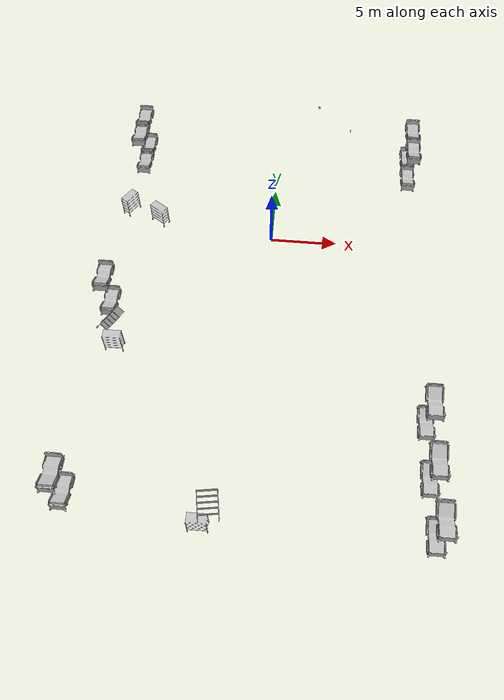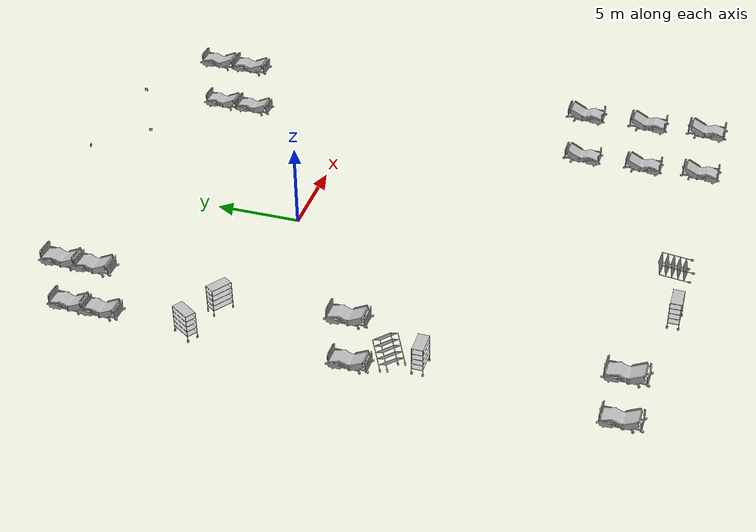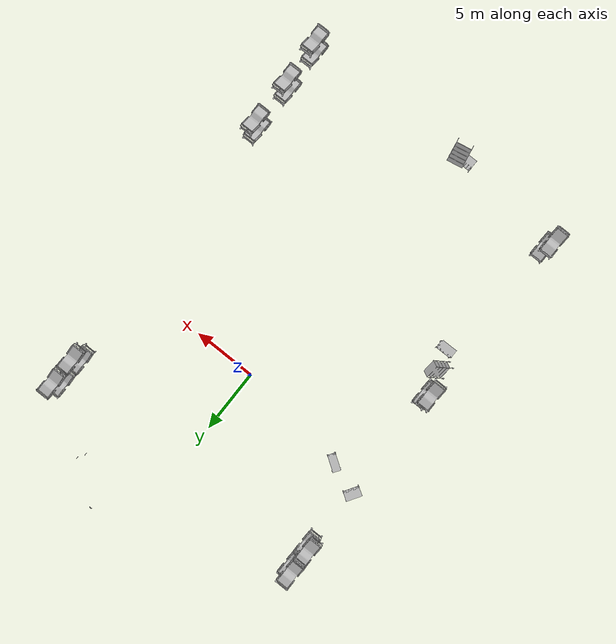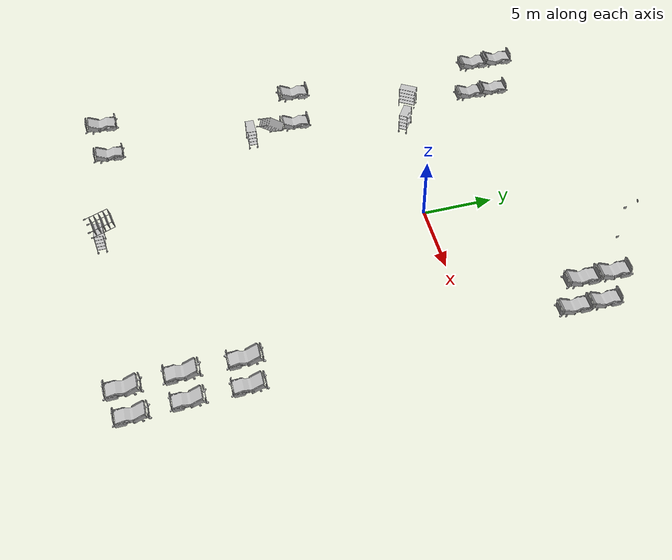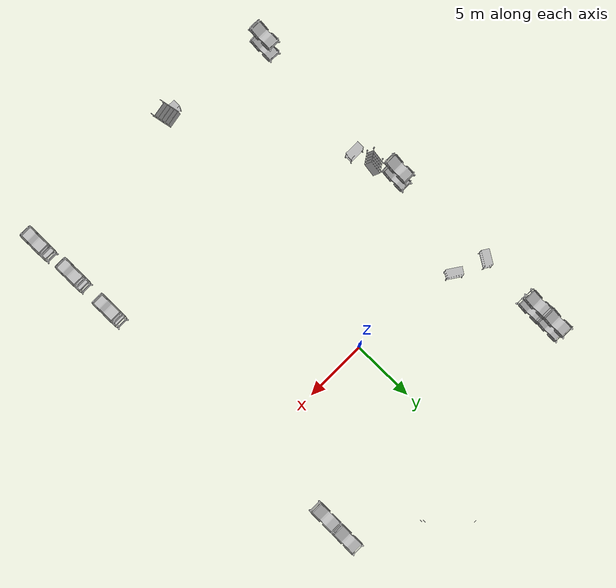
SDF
<sdf version="1.7">
 <world name="world">
  <gravity>0 0 -9.8</gravity>
  <physics name="default_physics" default="0" type="ode">
   <max_step_size>0.001</max_step_size>
   <real_time_factor>1</real_time_factor>
   <real_time_update_rate>1000</real_time_update_rate>
  </physics>
  <model name="CGMClassic_1">
   <frame name="CGMClassic::__model__" attached_to="CGMClassic::body">
    <pose relative_to="__model__">0 0 0 0 -0 0</pose>
   </frame>
   <static>1</static>
   <link name="CGMClassic::body">
    <pose relative_to="CGMClassic::__model__">0 0 0 0 -0 0</pose>
    <visual name="visual">
     <geometry>
      <mesh><uri>model://CGMClassic/meshes/CGMClassic.obj</uri><scale>0.01 0.01 0.01</scale></mesh>
     </geometry>
    </visual>
    <collision name="collision">
     <geometry>
      <mesh><uri>model://CGMClassic/meshes/CGMClassic.obj</uri><scale>0.01 0.01 0.01</scale></mesh>
     </geometry>
    </collision>
   </link>
   <pose>11.1777 -18.4129 0 0 0 -1.5656</pose>
  </model>
  <model name="CGMClassic_2">
   <frame name="CGMClassic::__model__" attached_to="CGMClassic::body">
    <pose relative_to="__model__">0 0 0 0 -0 0</pose>
   </frame>
   <static>1</static>
   <link name="CGMClassic::body">
    <pose relative_to="CGMClassic::__model__">0 0 0 0 -0 0</pose>
    <visual name="visual">
     <geometry>
      <mesh><uri>model://CGMClassic/meshes/CGMClassic.obj</uri><scale>0.01 0.01 0.01</scale></mesh>
     </geometry>
    </visual>
    <collision name="collision">
     <geometry>
      <mesh><uri>model://CGMClassic/meshes/CGMClassic.obj</uri><scale>0.01 0.01 0.01</scale></mesh>
     </geometry>
    </collision>
   </link>
   <pose>11.1179 -14.6493 0 0 0 -1.5656</pose>
  </model>
  <model name="CGMClassic_3">
   <frame name="CGMClassic::__model__" attached_to="CGMClassic::body">
    <pose relative_to="__model__">0 0 0 0 -0 0</pose>
   </frame>
   <static>1</static>
   <link name="CGMClassic::body">
    <pose relative_to="CGMClassic::__model__">0 0 0 0 -0 0</pose>
    <visual name="visual">
     <geometry>
      <mesh><uri>model://CGMClassic/meshes/CGMClassic.obj</uri><scale>0.01 0.01 0.01</scale></mesh>
     </geometry>
    </visual>
    <collision name="collision">
     <geometry>
      <mesh><uri>model://CGMClassic/meshes/CGMClassic.obj</uri><scale>0.01 0.01 0.01</scale></mesh>
     </geometry>
    </collision>
   </link>
   <pose>-11.2304 -21.1134 0 0 -0 1.56641</pose>
  </model>
  <model name="CGMClassic_4">
   <frame name="CGMClassic::__model__" attached_to="CGMClassic::body">
    <pose relative_to="__model__">0 0 0 0 -0 0</pose>
   </frame>
   <static>1</static>
   <link name="CGMClassic::body">
    <pose relative_to="CGMClassic::__model__">0 0 0 0 -0 0</pose>
    <visual name="visual">
     <geometry>
      <mesh><uri>model://CGMClassic/meshes/CGMClassic.obj</uri><scale>0.01 0.01 0.01</scale></mesh>
     </geometry>
    </visual>
    <collision name="collision">
     <geometry>
      <mesh><uri>model://CGMClassic/meshes/CGMClassic.obj</uri><scale>0.01 0.01 0.01</scale></mesh>
     </geometry>
    </collision>
   </link>
   <pose>-11.0878 -7.00992 0 0 -0 1.56296</pose>
  </model>
  <model name="CGMClassic_5">
   <frame name="CGMClassic::__model__" attached_to="CGMClassic::body">
    <pose relative_to="__model__">0 0 0 0 -0 0</pose>
   </frame>
   <static>1</static>
   <link name="CGMClassic::body">
    <pose relative_to="CGMClassic::__model__">0 0 0 0 -0 0</pose>
    <visual name="visual">
     <geometry>
      <mesh><uri>model://CGMClassic/meshes/CGMClassic.obj</uri><scale>0.01 0.01 0.01</scale></mesh>
     </geometry>
    </visual>
    <collision name="collision">
     <geometry>
      <mesh><uri>model://CGMClassic/meshes/CGMClassic.obj</uri><scale>0.01 0.01 0.01</scale></mesh>
     </geometry>
    </collision>
   </link>
   <pose>-11.0106 8.9505 -0.008203 0.0004 -0.035019 1.56285</pose>
  </model>
  <model name="CGMClassic_6">
   <frame name="CGMClassic::__model__" attached_to="CGMClassic::body">
    <pose relative_to="__model__">0 0 0 0 -0 0</pose>
   </frame>
   <static>1</static>
   <link name="CGMClassic::body">
    <pose relative_to="CGMClassic::__model__">0 0 0 0 -0 0</pose>
    <visual name="visual">
     <geometry>
      <mesh><uri>model://CGMClassic/meshes/CGMClassic.obj</uri><scale>0.01 0.01 0.01</scale></mesh>
     </geometry>
    </visual>
    <collision name="collision">
     <geometry>
      <mesh><uri>model://CGMClassic/meshes/CGMClassic.obj</uri><scale>0.01 0.01 0.01</scale></mesh>
     </geometry>
    </collision>
   </link>
   <pose>-11.025 7.10335 0 0 -0.035021 1.57427</pose>
  </model>
  <model name="StorageRack_2">
   <frame name="StorageRack::__model__" attached_to="StorageRack::link">
    <pose relative_to="__model__">0 0 0 0 -0 0</pose>
   </frame>
   <link name="StorageRack::link">
    <pose relative_to="StorageRack::__model__">0 0 0 0 -0 0</pose>
    <visual name="visual">
     <geometry><mesh><uri>model://StorageRack/meshes/StorageRack.obj</uri></mesh></geometry>
    </visual>
    <collision name="collision">
     <geometry><mesh><uri>model://StorageRack/meshes/StorageRack.obj</uri></mesh></geometry>
    </collision>
    <inertial>
     <inertia><ixx>1</ixx><ixy>0</ixy><ixz>0</ixz><iyy>1</iyy><iyz>0</iyz><izz>1</izz></inertia>
     <mass>1</mass>
    </inertial>
   </link>
   <pose>-2.69866 -22.4178 -1e-06 0 1e-06 0</pose>
  </model>
  <model name="CGMClassic_7">
   <frame name="CGMClassic::__model__" attached_to="CGMClassic::body">
    <pose relative_to="__model__">0 0 0 0 -0 0</pose>
   </frame>
   <static>1</static>
   <link name="CGMClassic::body">
    <pose relative_to="CGMClassic::__model__">0 0 0 0 -0 0</pose>
    <visual name="visual">
     <geometry>
      <mesh><uri>model://CGMClassic/meshes/CGMClassic.obj</uri><scale>0.01 0.01 0.01</scale></mesh>
     </geometry>
    </visual>
    <collision name="collision">
     <geometry>
      <mesh><uri>model://CGMClassic/meshes/CGMClassic.obj</uri><scale>0.01 0.01 0.01</scale></mesh>
     </geometry>
    </collision>
   </link>
   <pose>10.6166 9.06291 -0.008203 0.0004 -0.035019 1.56285</pose>
  </model>
  <model name="CGMClassic_8">
   <frame name="CGMClassic::__model__" attached_to="CGMClassic::body">
    <pose relative_to="__model__">0 0 0 0 -0 0</pose>
   </frame>
   <static>1</static>
   <link name="CGMClassic::body">
    <pose relative_to="CGMClassic::__model__">0 0 0 0 -0 0</pose>
    <visual name="visual">
     <geometry>
      <mesh><uri>model://CGMClassic/meshes/CGMClassic.obj</uri><scale>0.01 0.01 0.01</scale></mesh>
     </geometry>
    </visual>
    <collision name="collision">
     <geometry>
      <mesh><uri>model://CGMClassic/meshes/CGMClassic.obj</uri><scale>0.01 0.01 0.01</scale></mesh>
     </geometry>
    </collision>
   </link>
   <pose>10.6006 6.90956 -0.008203 0.0004 -0.035019 1.56285</pose>
  </model>
  <model name="CGMClassic_9">
   <frame name="CGMClassic::__model__" attached_to="CGMClassic::body">
    <pose relative_to="__model__">0 0 0 0 -0 0</pose>
   </frame>
   <static>1</static>
   <link name="CGMClassic::body">
    <pose relative_to="CGMClassic::__model__">0 0 0 0 -0 0</pose>
    <visual name="visual">
     <geometry>
      <mesh><uri>model://CGMClassic/meshes/CGMClassic.obj</uri><scale>0.01 0.01 0.01</scale></mesh>
     </geometry>
    </visual>
    <collision name="collision">
     <geometry>
      <mesh><uri>model://CGMClassic/meshes/CGMClassic.obj</uri><scale>0.01 0.01 0.01</scale></mesh>
     </geometry>
    </collision>
   </link>
   <pose>11.3613 -21.8867 0 0 0 -1.5656</pose>
  </model>
  <model name="StorageRack_3">
   <frame name="StorageRack::__model__" attached_to="StorageRack::link">
    <pose relative_to="__model__">0 0 0 0 -0 0</pose>
   </frame>
   <link name="StorageRack::link">
    <pose relative_to="StorageRack::__model__">0 0 0 0 -0 0</pose>
    <visual name="visual">
     <geometry><mesh><uri>model://StorageRack/meshes/StorageRack.obj</uri></mesh></geometry>
    </visual>
    <collision name="collision">
     <geometry><mesh><uri>model://StorageRack/meshes/StorageRack.obj</uri></mesh></geometry>
    </collision>
    <inertial>
     <inertia><ixx>1</ixx><ixy>0</ixy><ixz>0</ixz><iyy>1</iyy><iyz>0</iyz><izz>1</izz></inertia>
     <mass>1</mass>
    </inertial>
   </link>
   <pose>-10.1178 -10.4694 -0 0 -0 0</pose>
  </model>
  <model name="StorageRack_4">
   <frame name="StorageRack::__model__" attached_to="StorageRack::link">
    <pose relative_to="__model__">0 0 0 0 -0 0</pose>
   </frame>
   <link name="StorageRack::link">
    <pose relative_to="StorageRack::__model__">0 0 0 0 -0 0</pose>
    <visual name="visual">
     <geometry><mesh><uri>model://StorageRack/meshes/StorageRack.obj</uri></mesh></geometry>
    </visual>
    <collision name="collision">
     <geometry><mesh><uri>model://StorageRack/meshes/StorageRack.obj</uri></mesh></geometry>
    </collision>
    <inertial>
     <inertia><ixx>1</ixx><ixy>0</ixy><ixz>0</ixz><iyy>1</iyy><iyz>0</iyz><izz>1</izz></inertia>
     <mass>1</mass>
    </inertial>
   </link>
   <pose>-11.2409 2.10609 -1e-06 -1e-06 -1e-06 1.00872</pose>
  </model>
  <light name="ceiling_light_0" type="spot">
   <pose>-0.194533 13.8034 2.8 0 -0 0</pose>
   <diffuse>0.494118 0.494118 0.494118 1</diffuse>
   <specular>0.0941176 0.0941176 0.0941176 1</specular>
   <direction>0 0 -1</direction>
   <attenuation>
    <range>20</range>
    <constant>0.8</constant>
    <linear>0.1</linear>
    <quadratic>0.001</quadratic>
   </attenuation>
   <cast_shadows>0</cast_shadows>
   <spot><inner_angle>1</inner_angle><outer_angle>2.5</outer_angle><falloff>1</falloff></spot>
  </light>
  <light name="ceiling_light_1" type="spot">
   <pose>6.30005 8.9551 2.8 0 -0 0</pose>
   <diffuse>0.494118 0.494118 0.494118 1</diffuse>
   <specular>0.0941176 0.0941176 0.0941176 1</specular>
   <direction>0 0 -1</direction>
   <attenuation>
    <range>20</range>
    <constant>0.8</constant>
    <linear>0.1</linear>
    <quadratic>0.001</quadratic>
   </attenuation>
   <cast_shadows>0</cast_shadows>
   <spot><inner_angle>1</inner_angle><outer_angle>2.5</outer_angle><falloff>1</falloff></spot>
  </light>
  <light name="ceiling_light_2" type="spot">
   <pose>0.212387 2.1354 2.8 0 -0 0</pose>
   <diffuse>0.494118 0.494118 0.494118 1</diffuse>
   <specular>0.0941176 0.0941176 0.0941176 1</specular>
   <direction>0 0 -1</direction>
   <attenuation>
    <range>20</range>
    <constant>0.8</constant>
    <linear>0.1</linear>
    <quadratic>0.001</quadratic>
   </attenuation>
   <cast_shadows>0</cast_shadows>
   <spot><inner_angle>1</inner_angle><outer_angle>2.5</outer_angle><falloff>1</falloff></spot>
  </light>
  <light name="ceiling_light_3" type="spot">
   <pose>-5.81057 7.18327 2.8 0 -0 0</pose>
   <diffuse>0.494118 0.494118 0.494118 1</diffuse>
   <specular>0.0941176 0.0941176 0.0941176 1</specular>
   <direction>0 0 -1</direction>
   <attenuation>
    <range>20</range>
    <constant>0.8</constant>
    <linear>0.1</linear>
    <quadratic>0.001</quadratic>
   </attenuation>
   <cast_shadows>0</cast_shadows>
   <spot><inner_angle>1</inner_angle><outer_angle>2.5</outer_angle><falloff>1</falloff></spot>
  </light>
  <light name="ceiling_light_4" type="spot">
   <pose>-4.54396 -3.67312 2.8 0 -0 0</pose>
   <diffuse>0.494118 0.494118 0.494118 1</diffuse>
   <specular>0.0941176 0.0941176 0.0941176 1</specular>
   <direction>0 0 -1</direction>
   <attenuation>
    <range>20</range>
    <constant>0.8</constant>
    <linear>0.1</linear>
    <quadratic>0.001</quadratic>
   </attenuation>
   <cast_shadows>0</cast_shadows>
   <spot><inner_angle>1</inner_angle><outer_angle>2.5</outer_angle><falloff>1</falloff></spot>
  </light>
  <light name="ceiling_light_5" type="spot">
   <pose>-4.37087 -14.4782 2.8 0 -0 0</pose>
   <diffuse>0.494118 0.494118 0.494118 1</diffuse>
   <specular>0.0941176 0.0941176 0.0941176 1</specular>
   <direction>0 0 -1</direction>
   <attenuation>
    <range>20</range>
    <constant>0.8</constant>
    <linear>0.1</linear>
    <quadratic>0.001</quadratic>
   </attenuation>
   <cast_shadows>0</cast_shadows>
   <spot><inner_angle>1</inner_angle><outer_angle>2.5</outer_angle><falloff>1</falloff></spot>
  </light>
  <light name="ceiling_light_6" type="spot">
   <pose>-4.39457 -24.5382 2.8 0 -0 0</pose>
   <diffuse>0.494118 0.494118 0.494118 1</diffuse>
   <specular>0.0941176 0.0941176 0.0941176 1</specular>
   <direction>0 0 -1</direction>
   <attenuation>
    <range>20</range>
    <constant>0.8</constant>
    <linear>0.1</linear>
    <quadratic>0.001</quadratic>
   </attenuation>
   <cast_shadows>0</cast_shadows>
   <spot><inner_angle>1</inner_angle><outer_angle>2.5</outer_angle><falloff>1</falloff></spot>
  </light>
  <light name="ceiling_light_7" type="spot">
   <pose>-4.89858 -33.5301 2.8 0 -0 0</pose>
   <diffuse>0.494118 0.494118 0.494118 1</diffuse>
   <specular>0.0941176 0.0941176 0.0941176 1</specular>
   <direction>0 0 -1</direction>
   <attenuation>
    <range>20</range>
    <constant>0.8</constant>
    <linear>0.1</linear>
    <quadratic>0.001</quadratic>
   </attenuation>
   <cast_shadows>0</cast_shadows>
   <spot><inner_angle>1</inner_angle><outer_angle>2.5</outer_angle><falloff>1</falloff></spot>
  </light>
  <light name="ceiling_light_8" type="spot">
   <pose>4.63967 -24.4587 2.8 0 -0 0</pose>
   <diffuse>0.494118 0.494118 0.494118 1</diffuse>
   <specular>0.0941176 0.0941176 0.0941176 1</specular>
   <direction>0 0 -1</direction>
   <attenuation>
    <range>20</range>
    <constant>0.8</constant>
    <linear>0.1</linear>
    <quadratic>0.001</quadratic>
   </attenuation>
   <cast_shadows>0</cast_shadows>
   <spot><inner_angle>1</inner_angle><outer_angle>2.5</outer_angle><falloff>1</falloff></spot>
  </light>
  <light name="ceiling_light_9" type="spot">
   <pose>4.92633 -14.3923 2.8 0 -0 0</pose>
   <diffuse>0.494118 0.494118 0.494118 1</diffuse>
   <specular>0.0941176 0.0941176 0.0941176 1</specular>
   <direction>0 0 -1</direction>
   <attenuation>
    <range>20</range>
    <constant>0.8</constant>
    <linear>0.1</linear>
    <quadratic>0.001</quadratic>
   </attenuation>
   <cast_shadows>0</cast_shadows>
   <spot><inner_angle>1</inner_angle><outer_angle>2.5</outer_angle><falloff>1</falloff></spot>
  </light>
  <light name="ceiling_light_10" type="spot">
   <pose>4.7009 -3.77715 2.8 0 -0 0</pose>
   <diffuse>0.494118 0.494118 0.494118 1</diffuse>
   <specular>0.0941176 0.0941176 0.0941176 1</specular>
   <direction>0 0 -1</direction>
   <attenuation>
    <range>20</range>
    <constant>0.8</constant>
    <linear>0.1</linear>
    <quadratic>0.001</quadratic>
   </attenuation>
   <cast_shadows>0</cast_shadows>
   <spot><inner_angle>1</inner_angle><outer_angle>2.5</outer_angle><falloff>1</falloff></spot>
  </light>
  <light name="ceiling_light_11" type="spot">
   <pose>-9.02467 14.516 2.8 0 -0 0</pose>
   <diffuse>0.494118 0.494118 0.494118 1</diffuse>
   <specular>0.0941176 0.0941176 0.0941176 1</specular>
   <direction>0 0 -1</direction>
   <attenuation>
    <range>20</range>
    <constant>0.8</constant>
    <linear>0.1</linear>
    <quadratic>0.001</quadratic>
   </attenuation>
   <cast_shadows>0</cast_shadows>
   <spot><inner_angle>1</inner_angle><outer_angle>2.5</outer_angle><falloff>1</falloff></spot>
  </light>
  <light name="ceiling_light_12" type="spot">
   <pose>9.12495 14.4234 2.8 0 -0 0</pose>
   <diffuse>0.494118 0.494118 0.494118 1</diffuse>
   <specular>0.0941176 0.0941176 0.0941176 1</specular>
   <direction>0 0 -1</direction>
   <attenuation>
    <range>20</range>
    <constant>0.8</constant>
    <linear>0.1</linear>
    <quadratic>0.001</quadratic>
   </attenuation>
   <cast_shadows>0</cast_shadows>
   <spot><inner_angle>1</inner_angle><outer_angle>2.5</outer_angle><falloff>1</falloff></spot>
  </light>
  <light name="ceiling_light_13" type="spot">
   <pose>9.49822 -5.56304 2.8 0 -0 0</pose>
   <diffuse>0.494118 0.494118 0.494118 1</diffuse>
   <specular>0.0941176 0.0941176 0.0941176 1</specular>
   <direction>0 0 -1</direction>
   <attenuation>
    <range>20</range>
    <constant>0.8</constant>
    <linear>0.1</linear>
    <quadratic>0.001</quadratic>
   </attenuation>
   <cast_shadows>0</cast_shadows>
   <spot><inner_angle>1</inner_angle><outer_angle>2.5</outer_angle><falloff>1</falloff></spot>
  </light>
  <light name="ceiling_light_14" type="spot">
   <pose>-9.46806 -4.74662 2.8 0 -0 0</pose>
   <diffuse>0.494118 0.494118 0.494118 1</diffuse>
   <specular>0.0941176 0.0941176 0.0941176 1</specular>
   <direction>0 0 -1</direction>
   <attenuation>
    <range>20</range>
    <constant>0.8</constant>
    <linear>0.1</linear>
    <quadratic>0.001</quadratic>
   </attenuation>
   <cast_shadows>0</cast_shadows>
   <spot><inner_angle>1</inner_angle><outer_angle>2.5</outer_angle><falloff>1</falloff></spot>
  </light>
  <light name="ceiling_light_15" type="spot">
   <pose>-9.46885 -19.0778 2.8 0 -0 0</pose>
   <diffuse>0.494118 0.494118 0.494118 1</diffuse>
   <specular>0.0901961 0.0901961 0.0901961 1</specular>
   <direction>0 0 -1</direction>
   <attenuation>
    <range>20</range>
    <constant>0.8</constant>
    <linear>0.1</linear>
    <quadratic>0.001</quadratic>
   </attenuation>
   <cast_shadows>0</cast_shadows>
   <spot><inner_angle>1</inner_angle><outer_angle>2.5</outer_angle><falloff>1</falloff></spot>
  </light>
  <light name="ceiling_light_16" type="spot">
   <pose>-9.42207 -28.0708 2.8 0 -0 0</pose>
   <diffuse>0.494118 0.494118 0.494118 1</diffuse>
   <specular>0.0901961 0.0901961 0.0901961 1</specular>
   <direction>0 0 -1</direction>
   <attenuation>
    <range>20</range>
    <constant>0.8</constant>
    <linear>0.1</linear>
    <quadratic>0.001</quadratic>
   </attenuation>
   <cast_shadows>0</cast_shadows>
   <spot><inner_angle>1</inner_angle><outer_angle>2.5</outer_angle><falloff>1</falloff></spot>
  </light>
  <light name="ceiling_light_17" type="spot">
   <pose>1.66302 -11.4026 2.8 0 -0 0</pose>
   <diffuse>0.494118 0.494118 0.494118 1</diffuse>
   <specular>0.0901961 0.0901961 0.0901961 1</specular>
   <direction>0 0 -1</direction>
   <attenuation>
    <range>20</range>
    <constant>0.8</constant>
    <linear>0.1</linear>
    <quadratic>0.001</quadratic>
   </attenuation>
   <cast_shadows>0</cast_shadows>
   <spot><inner_angle>1</inner_angle><outer_angle>2.5</outer_angle><falloff>1</falloff></spot>
  </light>
  <light name="ceiling_light_18" type="spot">
   <pose>-1.64839 -19.4418 2.8 0 -0 0</pose>
   <diffuse>0.494118 0.494118 0.494118 1</diffuse>
   <specular>0.0901961 0.0901961 0.0901961 1</specular>
   <direction>0 0 -1</direction>
   <attenuation>
    <range>20</range>
    <constant>0.8</constant>
    <linear>0.1</linear>
    <quadratic>0.001</quadratic>
   </attenuation>
   <cast_shadows>0</cast_shadows>
   <spot><inner_angle>1</inner_angle><outer_angle>2.5</outer_angle><falloff>1</falloff></spot>
  </light>
  <light name="ceiling_light_19" type="spot">
   <pose>1.85793 -19.3856 2.8 0 -0 0</pose>
   <diffuse>0.494118 0.494118 0.494118 1</diffuse>
   <specular>0.0901961 0.0901961 0.0901961 1</specular>
   <direction>0 0 -1</direction>
   <attenuation>
    <range>20</range>
    <constant>0.8</constant>
    <linear>0.1</linear>
    <quadratic>0.001</quadratic>
   </attenuation>
   <cast_shadows>0</cast_shadows>
   <spot><inner_angle>1</inner_angle><outer_angle>2.5</outer_angle><falloff>1</falloff></spot>
  </light>
  <light name="ceiling_light_20" type="spot">
   <pose>-3.74086 -4.44142 2.8 0 -0 0</pose>
   <diffuse>0.494118 0.494118 0.494118 1</diffuse>
   <specular>0.0901961 0.0901961 0.0901961 1</specular>
   <direction>0 0 -1</direction>
   <attenuation>
    <range>20</range>
    <constant>0.8</constant>
    <linear>0.1</linear>
    <quadratic>0.001</quadratic>
   </attenuation>
   <cast_shadows>0</cast_shadows>
   <spot><inner_angle>1</inner_angle><outer_angle>2.5</outer_angle><falloff>1</falloff></spot>
  </light>
  <light name="ceiling_light_21" type="spot">
   <pose>-1.7167 -11.3151 2.8 0 -0 0</pose>
   <diffuse>0.494118 0.494118 0.494118 1</diffuse>
   <specular>0.0901961 0.0901961 0.0901961 1</specular>
   <direction>0 0 -1</direction>
   <attenuation>
    <range>20</range>
    <constant>0.8</constant>
    <linear>0.1</linear>
    <quadratic>0.001</quadratic>
   </attenuation>
   <cast_shadows>0</cast_shadows>
   <spot><inner_angle>1</inner_angle><outer_angle>2.5</outer_angle><falloff>1</falloff></spot>
  </light>
  <light name="ceiling_light_22" type="spot">
   <pose>-9.60933 -14.3792 2.8 0 -0 0</pose>
   <diffuse>0.494118 0.494118 0.494118 1</diffuse>
   <specular>0.0901961 0.0901961 0.0901961 1</specular>
   <direction>0 0 -1</direction>
   <attenuation>
    <range>20</range>
    <constant>0.8</constant>
    <linear>0.1</linear>
    <quadratic>0.001</quadratic>
   </attenuation>
   <cast_shadows>0</cast_shadows>
   <spot><inner_angle>1</inner_angle><outer_angle>2.5</outer_angle><falloff>1</falloff></spot>
  </light>
  <light name="ceiling_light_23" type="spot">
   <pose>-8.89647 0.199867 2.8 0 -0 0</pose>
   <diffuse>0.494118 0.494118 0.494118 1</diffuse>
   <specular>0.0901961 0.0901961 0.0901961 1</specular>
   <direction>0 0 -1</direction>
   <attenuation>
    <range>20</range>
    <constant>0.8</constant>
    <linear>0.1</linear>
    <quadratic>0.001</quadratic>
   </attenuation>
   <cast_shadows>0</cast_shadows>
   <spot><inner_angle>1</inner_angle><outer_angle>2.5</outer_angle><falloff>1</falloff></spot>
  </light>
  <light name="ceiling_light_24" type="spot">
   <pose>8.80325 1.99908 2.8 0 -0 0</pose>
   <diffuse>0.494118 0.494118 0.494118 1</diffuse>
   <specular>0.0901961 0.0901961 0.0901961 1</specular>
   <direction>0 0 -1</direction>
   <attenuation>
    <range>20</range>
    <constant>0.8</constant>
    <linear>0.1</linear>
    <quadratic>0.001</quadratic>
   </attenuation>
   <cast_shadows>0</cast_shadows>
   <spot><inner_angle>1</inner_angle><outer_angle>2.5</outer_angle><falloff>1</falloff></spot>
  </light>
  <light name="ceiling_light_25" type="spot">
   <pose>10.6153 10.2443 2.8 0 -0 0</pose>
   <diffuse>0.494118 0.494118 0.494118 1</diffuse>
   <specular>0.0941176 0.0941176 0.0941176 1</specular>
   <direction>0 0 -1</direction>
   <attenuation>
    <range>20</range>
    <constant>0.8</constant>
    <linear>0.1</linear>
    <quadratic>0.001</quadratic>
   </attenuation>
   <cast_shadows>0</cast_shadows>
   <spot><inner_angle>1</inner_angle><outer_angle>2.5</outer_angle><falloff>1</falloff></spot>
  </light>
  <light name="ceiling_light_26" type="spot">
   <pose>10.7071 5.95677 2.8 0 -0 0</pose>
   <diffuse>0.494118 0.494118 0.494118 1</diffuse>
   <specular>0.0941176 0.0941176 0.0941176 1</specular>
   <direction>0 0 -1</direction>
   <attenuation>
    <range>20</range>
    <constant>0.8</constant>
    <linear>0.1</linear>
    <quadratic>0.001</quadratic>
   </attenuation>
   <cast_shadows>0</cast_shadows>
   <spot><inner_angle>1</inner_angle><outer_angle>2.5</outer_angle><falloff>1</falloff></spot>
  </light>
  <light name="ceiling_light_27" type="spot">
   <pose>-10.6266 10.4097 2.8 0 -0 0</pose>
   <diffuse>0.494118 0.494118 0.494118 1</diffuse>
   <specular>0.0941176 0.0941176 0.0941176 1</specular>
   <direction>0 0 -1</direction>
   <attenuation>
    <range>20</range>
    <constant>0.8</constant>
    <linear>0.1</linear>
    <quadratic>0.001</quadratic>
   </attenuation>
   <cast_shadows>0</cast_shadows>
   <spot><inner_angle>1</inner_angle><outer_angle>2.5</outer_angle><falloff>1</falloff></spot>
  </light>
  <light name="ceiling_light_28" type="spot">
   <pose>-10.7712 6.05323 2.8 0 -0 0</pose>
   <diffuse>0.494118 0.494118 0.494118 1</diffuse>
   <specular>0.0941176 0.0941176 0.0941176 1</specular>
   <direction>0 0 -1</direction>
   <attenuation>
    <range>20</range>
    <constant>0.8</constant>
    <linear>0.1</linear>
    <quadratic>0.001</quadratic>
   </attenuation>
   <cast_shadows>0</cast_shadows>
   <spot><inner_angle>1</inner_angle><outer_angle>2.5</outer_angle><falloff>1</falloff></spot>
  </light>
  <light name="ceiling_light_29" type="spot">
   <pose>-9.64585 -30.5079 2.8 0 -0 0</pose>
   <diffuse>0.494118 0.494118 0.494118 1</diffuse>
   <specular>0.0941176 0.0941176 0.0941176 1</specular>
   <direction>0 0 -1</direction>
   <attenuation>
    <range>20</range>
    <constant>0.8</constant>
    <linear>0.1</linear>
    <quadratic>0.001</quadratic>
   </attenuation>
   <cast_shadows>0</cast_shadows>
   <spot><inner_angle>1</inner_angle><outer_angle>2.5</outer_angle><falloff>1</falloff></spot>
  </light>
  <light name="ceiling_light_30" type="spot">
   <pose>-11.9169 -24.6051 2.8 0 -0 0</pose>
   <diffuse>0.494118 0.494118 0.494118 1</diffuse>
   <specular>0.0941176 0.0941176 0.0941176 1</specular>
   <direction>0 0 -1</direction>
   <attenuation>
    <range>20</range>
    <constant>0.8</constant>
    <linear>0.1</linear>
    <quadratic>0.001</quadratic>
   </attenuation>
   <cast_shadows>0</cast_shadows>
   <spot><inner_angle>1</inner_angle><outer_angle>2.5</outer_angle><falloff>1</falloff></spot>
  </light>
  <light name="ceiling_light_31" type="spot">
   <pose>-4.29701 11.4852 2.8 0 -0 0</pose>
   <diffuse>0.494118 0.494118 0.494118 1</diffuse>
   <specular>0.0901961 0.0901961 0.0901961 1</specular>
   <direction>0 0 -1</direction>
   <attenuation>
    <range>20</range>
    <constant>0.8</constant>
    <linear>0.1</linear>
    <quadratic>0.001</quadratic>
   </attenuation>
   <cast_shadows>0</cast_shadows>
   <spot><inner_angle>1</inner_angle><outer_angle>2.5</outer_angle><falloff>1</falloff></spot>
  </light>
  <light name="ceiling_light_32" type="spot">
   <pose>3.41329 12.0406 2.8 0 -0 0</pose>
   <diffuse>0.494118 0.494118 0.494118 1</diffuse>
   <specular>0.0901961 0.0901961 0.0901961 1</specular>
   <direction>0 0 -1</direction>
   <attenuation>
    <range>20</range>
    <constant>0.8</constant>
    <linear>0.1</linear>
    <quadratic>0.001</quadratic>
   </attenuation>
   <cast_shadows>0</cast_shadows>
   <spot><inner_angle>1</inner_angle><outer_angle>2.5</outer_angle><falloff>1</falloff></spot>
  </light>
  <light name="ceiling_light_33" type="spot">
   <pose>-0.181496 7.28878 2.8 0 -0 0</pose>
   <diffuse>0.494118 0.494118 0.494118 1</diffuse>
   <specular>0.0901961 0.0901961 0.0901961 1</specular>
   <direction>0 0 -1</direction>
   <attenuation>
    <range>20</range>
    <constant>0.8</constant>
    <linear>0.1</linear>
    <quadratic>0.001</quadratic>
   </attenuation>
   <cast_shadows>0</cast_shadows>
   <spot><inner_angle>1</inner_angle><outer_angle>2.5</outer_angle><falloff>1</falloff></spot>
  </light>
  <model name="floor_1_CGMClassic_1">
   <frame name="CGMClassic::__model__" attached_to="CGMClassic::body">
    <pose relative_to="__model__">0 0 0 0 -0 0</pose>
   </frame>
   <static>1</static>
   <link name="CGMClassic::body">
    <pose relative_to="CGMClassic::__model__">0 0 0 0 -0 0</pose>
    <visual name="visual">
     <geometry>
      <mesh><uri>model://CGMClassic/meshes/CGMClassic.obj</uri><scale>0.01 0.01 0.01</scale></mesh>
     </geometry>
    </visual>
    <collision name="collision">
     <geometry>
      <mesh><uri>model://CGMClassic/meshes/CGMClassic.obj</uri><scale>0.01 0.01 0.01</scale></mesh>
     </geometry>
    </collision>
   </link>
   <pose>11.1777 -18.4129 3 0 0 -1.5656</pose>
  </model>
  <model name="floor_1_CGMClassic_2">
   <frame name="CGMClassic::__model__" attached_to="CGMClassic::body">
    <pose relative_to="__model__">0 0 0 0 -0 0</pose>
   </frame>
   <static>1</static>
   <link name="CGMClassic::body">
    <pose relative_to="CGMClassic::__model__">0 0 0 0 -0 0</pose>
    <visual name="visual">
     <geometry>
      <mesh><uri>model://CGMClassic/meshes/CGMClassic.obj</uri><scale>0.01 0.01 0.01</scale></mesh>
     </geometry>
    </visual>
    <collision name="collision">
     <geometry>
      <mesh><uri>model://CGMClassic/meshes/CGMClassic.obj</uri><scale>0.01 0.01 0.01</scale></mesh>
     </geometry>
    </collision>
   </link>
   <pose>11.1179 -14.6493 3 0 0 -1.5656</pose>
  </model>
  <model name="floor_1_CGMClassic_3">
   <frame name="CGMClassic::__model__" attached_to="CGMClassic::body">
    <pose relative_to="__model__">0 0 0 0 -0 0</pose>
   </frame>
   <static>1</static>
   <link name="CGMClassic::body">
    <pose relative_to="CGMClassic::__model__">0 0 0 0 -0 0</pose>
    <visual name="visual">
     <geometry>
      <mesh><uri>model://CGMClassic/meshes/CGMClassic.obj</uri><scale>0.01 0.01 0.01</scale></mesh>
     </geometry>
    </visual>
    <collision name="collision">
     <geometry>
      <mesh><uri>model://CGMClassic/meshes/CGMClassic.obj</uri><scale>0.01 0.01 0.01</scale></mesh>
     </geometry>
    </collision>
   </link>
   <pose>-11.2304 -21.1134 3 0 -0 1.56641</pose>
  </model>
  <model name="floor_1_CGMClassic_4">
   <frame name="CGMClassic::__model__" attached_to="CGMClassic::body">
    <pose relative_to="__model__">0 0 0 0 -0 0</pose>
   </frame>
   <static>1</static>
   <link name="CGMClassic::body">
    <pose relative_to="CGMClassic::__model__">0 0 0 0 -0 0</pose>
    <visual name="visual">
     <geometry>
      <mesh><uri>model://CGMClassic/meshes/CGMClassic.obj</uri><scale>0.01 0.01 0.01</scale></mesh>
     </geometry>
    </visual>
    <collision name="collision">
     <geometry>
      <mesh><uri>model://CGMClassic/meshes/CGMClassic.obj</uri><scale>0.01 0.01 0.01</scale></mesh>
     </geometry>
    </collision>
   </link>
   <pose>-11.0878 -7.00992 3 0 -0 1.56296</pose>
  </model>
  <model name="floor_1_CGMClassic_5">
   <frame name="CGMClassic::__model__" attached_to="CGMClassic::body">
    <pose relative_to="__model__">0 0 0 0 -0 0</pose>
   </frame>
   <static>1</static>
   <link name="CGMClassic::body">
    <pose relative_to="CGMClassic::__model__">0 0 0 0 -0 0</pose>
    <visual name="visual">
     <geometry>
      <mesh><uri>model://CGMClassic/meshes/CGMClassic.obj</uri><scale>0.01 0.01 0.01</scale></mesh>
     </geometry>
    </visual>
    <collision name="collision">
     <geometry>
      <mesh><uri>model://CGMClassic/meshes/CGMClassic.obj</uri><scale>0.01 0.01 0.01</scale></mesh>
     </geometry>
    </collision>
   </link>
   <pose>-11.0106 8.9505 2.9918 0.0004 -0.035019 1.56285</pose>
  </model>
  <model name="floor_1_CGMClassic_6">
   <frame name="CGMClassic::__model__" attached_to="CGMClassic::body">
    <pose relative_to="__model__">0 0 0 0 -0 0</pose>
   </frame>
   <static>1</static>
   <link name="CGMClassic::body">
    <pose relative_to="CGMClassic::__model__">0 0 0 0 -0 0</pose>
    <visual name="visual">
     <geometry>
      <mesh><uri>model://CGMClassic/meshes/CGMClassic.obj</uri><scale>0.01 0.01 0.01</scale></mesh>
     </geometry>
    </visual>
    <collision name="collision">
     <geometry>
      <mesh><uri>model://CGMClassic/meshes/CGMClassic.obj</uri><scale>0.01 0.01 0.01</scale></mesh>
     </geometry>
    </collision>
   </link>
   <pose>-11.025 7.10335 3 0 -0.035021 1.57427</pose>
  </model>
  <model name="floor_1_StorageRack_2">
   <frame name="StorageRack::__model__" attached_to="StorageRack::link">
    <pose relative_to="__model__">0 0 0 0 -0 0</pose>
   </frame>
   <link name="StorageRack::link">
    <pose relative_to="StorageRack::__model__">0 0 0 0 -0 0</pose>
    <visual name="visual">
     <geometry><mesh><uri>model://StorageRack/meshes/StorageRack.obj</uri></mesh></geometry>
    </visual>
    <collision name="collision">
     <geometry><mesh><uri>model://StorageRack/meshes/StorageRack.obj</uri></mesh></geometry>
    </collision>
    <inertial>
     <inertia><ixx>1</ixx><ixy>0</ixy><ixz>0</ixz><iyy>1</iyy><iyz>0</iyz><izz>1</izz></inertia>
     <mass>1</mass>
    </inertial>
   </link>
   <pose>-1.8488 -22.936 2.93177 -1.35228 0.049679 0.170407</pose>
  </model>
  <model name="floor_1_CGMClassic_7">
   <frame name="CGMClassic::__model__" attached_to="CGMClassic::body">
    <pose relative_to="__model__">0 0 0 0 -0 0</pose>
   </frame>
   <static>1</static>
   <link name="CGMClassic::body">
    <pose relative_to="CGMClassic::__model__">0 0 0 0 -0 0</pose>
    <visual name="visual">
     <geometry>
      <mesh><uri>model://CGMClassic/meshes/CGMClassic.obj</uri><scale>0.01 0.01 0.01</scale></mesh>
     </geometry>
    </visual>
    <collision name="collision">
     <geometry>
      <mesh><uri>model://CGMClassic/meshes/CGMClassic.obj</uri><scale>0.01 0.01 0.01</scale></mesh>
     </geometry>
    </collision>
   </link>
   <pose>10.6166 9.06291 2.9918 0.0004 -0.035019 1.56285</pose>
  </model>
  <model name="floor_1_CGMClassic_8">
   <frame name="CGMClassic::__model__" attached_to="CGMClassic::body">
    <pose relative_to="__model__">0 0 0 0 -0 0</pose>
   </frame>
   <static>1</static>
   <link name="CGMClassic::body">
    <pose relative_to="CGMClassic::__model__">0 0 0 0 -0 0</pose>
    <visual name="visual">
     <geometry>
      <mesh><uri>model://CGMClassic/meshes/CGMClassic.obj</uri><scale>0.01 0.01 0.01</scale></mesh>
     </geometry>
    </visual>
    <collision name="collision">
     <geometry>
      <mesh><uri>model://CGMClassic/meshes/CGMClassic.obj</uri><scale>0.01 0.01 0.01</scale></mesh>
     </geometry>
    </collision>
   </link>
   <pose>10.6006 6.90956 2.9918 0.0004 -0.035019 1.56285</pose>
  </model>
  <model name="floor_1_CGMClassic_9">
   <frame name="CGMClassic::__model__" attached_to="CGMClassic::body">
    <pose relative_to="__model__">0 0 0 0 -0 0</pose>
   </frame>
   <static>1</static>
   <link name="CGMClassic::body">
    <pose relative_to="CGMClassic::__model__">0 0 0 0 -0 0</pose>
    <visual name="visual">
     <geometry>
      <mesh><uri>model://CGMClassic/meshes/CGMClassic.obj</uri><scale>0.01 0.01 0.01</scale></mesh>
     </geometry>
    </visual>
    <collision name="collision">
     <geometry>
      <mesh><uri>model://CGMClassic/meshes/CGMClassic.obj</uri><scale>0.01 0.01 0.01</scale></mesh>
     </geometry>
    </collision>
   </link>
   <pose>11.3613 -21.8867 3 0 0 -1.5656</pose>
  </model>
  <model name="floor_1_StorageRack_3">
   <frame name="StorageRack::__model__" attached_to="StorageRack::link">
    <pose relative_to="__model__">0 0 0 0 -0 0</pose>
   </frame>
   <link name="StorageRack::link">
    <pose relative_to="StorageRack::__model__">0 0 0 0 -0 0</pose>
    <visual name="visual">
     <geometry><mesh><uri>model://StorageRack/meshes/StorageRack.obj</uri></mesh></geometry>
    </visual>
    <collision name="collision">
     <geometry><mesh><uri>model://StorageRack/meshes/StorageRack.obj</uri></mesh></geometry>
    </collision>
    <inertial>
     <inertia><ixx>1</ixx><ixy>0</ixy><ixz>0</ixz><iyy>1</iyy><iyz>0</iyz><izz>1</izz></inertia>
     <mass>1</mass>
    </inertial>
   </link>
   <pose>-11.1973 -9.32612 0.547612 -0.718687 -0.653072 -1.58927</pose>
  </model>
  <model name="floor_1_StorageRack_4">
   <frame name="StorageRack::__model__" attached_to="StorageRack::link">
    <pose relative_to="__model__">0 0 0 0 -0 0</pose>
   </frame>
   <link name="StorageRack::link">
    <pose relative_to="StorageRack::__model__">0 0 0 0 -0 0</pose>
    <visual name="visual">
     <geometry><mesh><uri>model://StorageRack/meshes/StorageRack.obj</uri></mesh></geometry>
    </visual>
    <collision name="collision">
     <geometry><mesh><uri>model://StorageRack/meshes/StorageRack.obj</uri></mesh></geometry>
    </collision>
    <inertial>
     <inertia><ixx>1</ixx><ixy>0</ixy><ixz>0</ixz><iyy>1</iyy><iyz>0</iyz><izz>1</izz></inertia>
     <mass>1</mass>
    </inertial>
   </link>
   <pose>-8.79288 1.17712 -2e-06 0 3e-06 2.54889</pose>
  </model>
  <light name="floor_1_ceiling_light_0" type="spot">
   <pose>-0.194533 13.8034 5.8 0 -0 0</pose>
   <diffuse>0.494118 0.494118 0.494118 1</diffuse>
   <specular>0.0941176 0.0941176 0.0941176 1</specular>
   <direction>0 0 -1</direction>
   <attenuation>
    <range>20</range>
    <constant>0.8</constant>
    <linear>0.1</linear>
    <quadratic>0.001</quadratic>
   </attenuation>
   <cast_shadows>0</cast_shadows>
   <spot><inner_angle>1</inner_angle><outer_angle>2.5</outer_angle><falloff>1</falloff></spot>
  </light>
  <light name="floor_1_ceiling_light_1" type="spot">
   <pose>6.30005 8.9551 5.8 0 -0 0</pose>
   <diffuse>0.494118 0.494118 0.494118 1</diffuse>
   <specular>0.0941176 0.0941176 0.0941176 1</specular>
   <direction>0 0 -1</direction>
   <attenuation>
    <range>20</range>
    <constant>0.8</constant>
    <linear>0.1</linear>
    <quadratic>0.001</quadratic>
   </attenuation>
   <cast_shadows>0</cast_shadows>
   <spot><inner_angle>1</inner_angle><outer_angle>2.5</outer_angle><falloff>1</falloff></spot>
  </light>
  <light name="floor_1_ceiling_light_2" type="spot">
   <pose>0.212387 2.1354 5.8 0 -0 0</pose>
   <diffuse>0.494118 0.494118 0.494118 1</diffuse>
   <specular>0.0941176 0.0941176 0.0941176 1</specular>
   <direction>0 0 -1</direction>
   <attenuation>
    <range>20</range>
    <constant>0.8</constant>
    <linear>0.1</linear>
    <quadratic>0.001</quadratic>
   </attenuation>
   <cast_shadows>0</cast_shadows>
   <spot><inner_angle>1</inner_angle><outer_angle>2.5</outer_angle><falloff>1</falloff></spot>
  </light>
  <light name="floor_1_ceiling_light_3" type="spot">
   <pose>-5.81057 7.18327 5.8 0 -0 0</pose>
   <diffuse>0.494118 0.494118 0.494118 1</diffuse>
   <specular>0.0941176 0.0941176 0.0941176 1</specular>
   <direction>0 0 -1</direction>
   <attenuation>
    <range>20</range>
    <constant>0.8</constant>
    <linear>0.1</linear>
    <quadratic>0.001</quadratic>
   </attenuation>
   <cast_shadows>0</cast_shadows>
   <spot><inner_angle>1</inner_angle><outer_angle>2.5</outer_angle><falloff>1</falloff></spot>
  </light>
  <light name="floor_1_ceiling_light_4" type="spot">
   <pose>-4.54396 -3.67312 5.8 0 -0 0</pose>
   <diffuse>0.494118 0.494118 0.494118 1</diffuse>
   <specular>0.0941176 0.0941176 0.0941176 1</specular>
   <direction>0 0 -1</direction>
   <attenuation>
    <range>20</range>
    <constant>0.8</constant>
    <linear>0.1</linear>
    <quadratic>0.001</quadratic>
   </attenuation>
   <cast_shadows>0</cast_shadows>
   <spot><inner_angle>1</inner_angle><outer_angle>2.5</outer_angle><falloff>1</falloff></spot>
  </light>
  <light name="floor_1_ceiling_light_5" type="spot">
   <pose>-4.37087 -14.4782 5.8 0 -0 0</pose>
   <diffuse>0.494118 0.494118 0.494118 1</diffuse>
   <specular>0.0941176 0.0941176 0.0941176 1</specular>
   <direction>0 0 -1</direction>
   <attenuation>
    <range>20</range>
    <constant>0.8</constant>
    <linear>0.1</linear>
    <quadratic>0.001</quadratic>
   </attenuation>
   <cast_shadows>0</cast_shadows>
   <spot><inner_angle>1</inner_angle><outer_angle>2.5</outer_angle><falloff>1</falloff></spot>
  </light>
  <light name="floor_1_ceiling_light_6" type="spot">
   <pose>-4.39457 -24.5382 5.8 0 -0 0</pose>
   <diffuse>0.494118 0.494118 0.494118 1</diffuse>
   <specular>0.0941176 0.0941176 0.0941176 1</specular>
   <direction>0 0 -1</direction>
   <attenuation>
    <range>20</range>
    <constant>0.8</constant>
    <linear>0.1</linear>
    <quadratic>0.001</quadratic>
   </attenuation>
   <cast_shadows>0</cast_shadows>
   <spot><inner_angle>1</inner_angle><outer_angle>2.5</outer_angle><falloff>1</falloff></spot>
  </light>
  <light name="floor_1_ceiling_light_7" type="spot">
   <pose>-4.89858 -33.5301 5.8 0 -0 0</pose>
   <diffuse>0.494118 0.494118 0.494118 1</diffuse>
   <specular>0.0941176 0.0941176 0.0941176 1</specular>
   <direction>0 0 -1</direction>
   <attenuation>
    <range>20</range>
    <constant>0.8</constant>
    <linear>0.1</linear>
    <quadratic>0.001</quadratic>
   </attenuation>
   <cast_shadows>0</cast_shadows>
   <spot><inner_angle>1</inner_angle><outer_angle>2.5</outer_angle><falloff>1</falloff></spot>
  </light>
  <light name="floor_1_ceiling_light_8" type="spot">
   <pose>4.63967 -24.4587 5.8 0 -0 0</pose>
   <diffuse>0.494118 0.494118 0.494118 1</diffuse>
   <specular>0.0941176 0.0941176 0.0941176 1</specular>
   <direction>0 0 -1</direction>
   <attenuation>
    <range>20</range>
    <constant>0.8</constant>
    <linear>0.1</linear>
    <quadratic>0.001</quadratic>
   </attenuation>
   <cast_shadows>0</cast_shadows>
   <spot><inner_angle>1</inner_angle><outer_angle>2.5</outer_angle><falloff>1</falloff></spot>
  </light>
  <light name="floor_1_ceiling_light_9" type="spot">
   <pose>4.92633 -14.3923 5.8 0 -0 0</pose>
   <diffuse>0.494118 0.494118 0.494118 1</diffuse>
   <specular>0.0941176 0.0941176 0.0941176 1</specular>
   <direction>0 0 -1</direction>
   <attenuation>
    <range>20</range>
    <constant>0.8</constant>
    <linear>0.1</linear>
    <quadratic>0.001</quadratic>
   </attenuation>
   <cast_shadows>0</cast_shadows>
   <spot><inner_angle>1</inner_angle><outer_angle>2.5</outer_angle><falloff>1</falloff></spot>
  </light>
  <light name="floor_1_ceiling_light_10" type="spot">
   <pose>4.7009 -3.77715 5.8 0 -0 0</pose>
   <diffuse>0.494118 0.494118 0.494118 1</diffuse>
   <specular>0.0941176 0.0941176 0.0941176 1</specular>
   <direction>0 0 -1</direction>
   <attenuation>
    <range>20</range>
    <constant>0.8</constant>
    <linear>0.1</linear>
    <quadratic>0.001</quadratic>
   </attenuation>
   <cast_shadows>0</cast_shadows>
   <spot><inner_angle>1</inner_angle><outer_angle>2.5</outer_angle><falloff>1</falloff></spot>
  </light>
  <light name="floor_1_ceiling_light_11" type="spot">
   <pose>-9.02467 14.516 5.8 0 -0 0</pose>
   <diffuse>0.494118 0.494118 0.494118 1</diffuse>
   <specular>0.0941176 0.0941176 0.0941176 1</specular>
   <direction>0 0 -1</direction>
   <attenuation>
    <range>20</range>
    <constant>0.8</constant>
    <linear>0.1</linear>
    <quadratic>0.001</quadratic>
   </attenuation>
   <cast_shadows>0</cast_shadows>
   <spot><inner_angle>1</inner_angle><outer_angle>2.5</outer_angle><falloff>1</falloff></spot>
  </light>
  <light name="floor_1_ceiling_light_12" type="spot">
   <pose>9.12495 14.4234 5.8 0 -0 0</pose>
   <diffuse>0.494118 0.494118 0.494118 1</diffuse>
   <specular>0.0941176 0.0941176 0.0941176 1</specular>
   <direction>0 0 -1</direction>
   <attenuation>
    <range>20</range>
    <constant>0.8</constant>
    <linear>0.1</linear>
    <quadratic>0.001</quadratic>
   </attenuation>
   <cast_shadows>0</cast_shadows>
   <spot><inner_angle>1</inner_angle><outer_angle>2.5</outer_angle><falloff>1</falloff></spot>
  </light>
  <light name="floor_1_ceiling_light_13" type="spot">
   <pose>9.49822 -5.56304 5.8 0 -0 0</pose>
   <diffuse>0.494118 0.494118 0.494118 1</diffuse>
   <specular>0.0941176 0.0941176 0.0941176 1</specular>
   <direction>0 0 -1</direction>
   <attenuation>
    <range>20</range>
    <constant>0.8</constant>
    <linear>0.1</linear>
    <quadratic>0.001</quadratic>
   </attenuation>
   <cast_shadows>0</cast_shadows>
   <spot><inner_angle>1</inner_angle><outer_angle>2.5</outer_angle><falloff>1</falloff></spot>
  </light>
  <light name="floor_1_ceiling_light_14" type="spot">
   <pose>-9.46806 -4.74662 5.8 0 -0 0</pose>
   <diffuse>0.494118 0.494118 0.494118 1</diffuse>
   <specular>0.0941176 0.0941176 0.0941176 1</specular>
   <direction>0 0 -1</direction>
   <attenuation>
    <range>20</range>
    <constant>0.8</constant>
    <linear>0.1</linear>
    <quadratic>0.001</quadratic>
   </attenuation>
   <cast_shadows>0</cast_shadows>
   <spot><inner_angle>1</inner_angle><outer_angle>2.5</outer_angle><falloff>1</falloff></spot>
  </light>
  <light name="floor_1_ceiling_light_15" type="spot">
   <pose>-9.46885 -19.0778 5.8 0 -0 0</pose>
   <diffuse>0.494118 0.494118 0.494118 1</diffuse>
   <specular>0.0901961 0.0901961 0.0901961 1</specular>
   <direction>0 0 -1</direction>
   <attenuation>
    <range>20</range>
    <constant>0.8</constant>
    <linear>0.1</linear>
    <quadratic>0.001</quadratic>
   </attenuation>
   <cast_shadows>0</cast_shadows>
   <spot><inner_angle>1</inner_angle><outer_angle>2.5</outer_angle><falloff>1</falloff></spot>
  </light>
  <light name="floor_1_ceiling_light_16" type="spot">
   <pose>-9.42207 -28.0708 5.8 0 -0 0</pose>
   <diffuse>0.494118 0.494118 0.494118 1</diffuse>
   <specular>0.0901961 0.0901961 0.0901961 1</specular>
   <direction>0 0 -1</direction>
   <attenuation>
    <range>20</range>
    <constant>0.8</constant>
    <linear>0.1</linear>
    <quadratic>0.001</quadratic>
   </attenuation>
   <cast_shadows>0</cast_shadows>
   <spot><inner_angle>1</inner_angle><outer_angle>2.5</outer_angle><falloff>1</falloff></spot>
  </light>
  <light name="floor_1_ceiling_light_17" type="spot">
   <pose>1.66302 -11.4026 5.8 0 -0 0</pose>
   <diffuse>0.494118 0.494118 0.494118 1</diffuse>
   <specular>0.0901961 0.0901961 0.0901961 1</specular>
   <direction>0 0 -1</direction>
   <attenuation>
    <range>20</range>
    <constant>0.8</constant>
    <linear>0.1</linear>
    <quadratic>0.001</quadratic>
   </attenuation>
   <cast_shadows>0</cast_shadows>
   <spot><inner_angle>1</inner_angle><outer_angle>2.5</outer_angle><falloff>1</falloff></spot>
  </light>
  <light name="floor_1_ceiling_light_18" type="spot">
   <pose>-1.64839 -19.4418 5.8 0 -0 0</pose>
   <diffuse>0.494118 0.494118 0.494118 1</diffuse>
   <specular>0.0901961 0.0901961 0.0901961 1</specular>
   <direction>0 0 -1</direction>
   <attenuation>
    <range>20</range>
    <constant>0.8</constant>
    <linear>0.1</linear>
    <quadratic>0.001</quadratic>
   </attenuation>
   <cast_shadows>0</cast_shadows>
   <spot><inner_angle>1</inner_angle><outer_angle>2.5</outer_angle><falloff>1</falloff></spot>
  </light>
  <light name="floor_1_ceiling_light_19" type="spot">
   <pose>1.85793 -19.3856 5.8 0 -0 0</pose>
   <diffuse>0.494118 0.494118 0.494118 1</diffuse>
   <specular>0.0901961 0.0901961 0.0901961 1</specular>
   <direction>0 0 -1</direction>
   <attenuation>
    <range>20</range>
    <constant>0.8</constant>
    <linear>0.1</linear>
    <quadratic>0.001</quadratic>
   </attenuation>
   <cast_shadows>0</cast_shadows>
   <spot><inner_angle>1</inner_angle><outer_angle>2.5</outer_angle><falloff>1</falloff></spot>
  </light>
  <light name="floor_1_ceiling_light_20" type="spot">
   <pose>-3.74086 -4.44142 5.8 0 -0 0</pose>
   <diffuse>0.494118 0.494118 0.494118 1</diffuse>
   <specular>0.0901961 0.0901961 0.0901961 1</specular>
   <direction>0 0 -1</direction>
   <attenuation>
    <range>20</range>
    <constant>0.8</constant>
    <linear>0.1</linear>
    <quadratic>0.001</quadratic>
   </attenuation>
   <cast_shadows>0</cast_shadows>
   <spot><inner_angle>1</inner_angle><outer_angle>2.5</outer_angle><falloff>1</falloff></spot>
  </light>
  <light name="floor_1_ceiling_light_21" type="spot">
   <pose>-1.7167 -11.3151 5.8 0 -0 0</pose>
   <diffuse>0.494118 0.494118 0.494118 1</diffuse>
   <specular>0.0901961 0.0901961 0.0901961 1</specular>
   <direction>0 0 -1</direction>
   <attenuation>
    <range>20</range>
    <constant>0.8</constant>
    <linear>0.1</linear>
    <quadratic>0.001</quadratic>
   </attenuation>
   <cast_shadows>0</cast_shadows>
   <spot><inner_angle>1</inner_angle><outer_angle>2.5</outer_angle><falloff>1</falloff></spot>
  </light>
  <light name="floor_1_ceiling_light_22" type="spot">
   <pose>-9.60933 -14.3792 5.8 0 -0 0</pose>
   <diffuse>0.494118 0.494118 0.494118 1</diffuse>
   <specular>0.0901961 0.0901961 0.0901961 1</specular>
   <direction>0 0 -1</direction>
   <attenuation>
    <range>20</range>
    <constant>0.8</constant>
    <linear>0.1</linear>
    <quadratic>0.001</quadratic>
   </attenuation>
   <cast_shadows>0</cast_shadows>
   <spot><inner_angle>1</inner_angle><outer_angle>2.5</outer_angle><falloff>1</falloff></spot>
  </light>
  <light name="floor_1_ceiling_light_23" type="spot">
   <pose>-8.89647 0.199867 5.8 0 -0 0</pose>
   <diffuse>0.494118 0.494118 0.494118 1</diffuse>
   <specular>0.0901961 0.0901961 0.0901961 1</specular>
   <direction>0 0 -1</direction>
   <attenuation>
    <range>20</range>
    <constant>0.8</constant>
    <linear>0.1</linear>
    <quadratic>0.001</quadratic>
   </attenuation>
   <cast_shadows>0</cast_shadows>
   <spot><inner_angle>1</inner_angle><outer_angle>2.5</outer_angle><falloff>1</falloff></spot>
  </light>
  <light name="floor_1_ceiling_light_24" type="spot">
   <pose>8.80325 1.99908 5.8 0 -0 0</pose>
   <diffuse>0.494118 0.494118 0.494118 1</diffuse>
   <specular>0.0901961 0.0901961 0.0901961 1</specular>
   <direction>0 0 -1</direction>
   <attenuation>
    <range>20</range>
    <constant>0.8</constant>
    <linear>0.1</linear>
    <quadratic>0.001</quadratic>
   </attenuation>
   <cast_shadows>0</cast_shadows>
   <spot><inner_angle>1</inner_angle><outer_angle>2.5</outer_angle><falloff>1</falloff></spot>
  </light>
  <light name="floor_1_ceiling_light_25" type="spot">
   <pose>10.6153 10.2443 5.8 0 -0 0</pose>
   <diffuse>0.494118 0.494118 0.494118 1</diffuse>
   <specular>0.0941176 0.0941176 0.0941176 1</specular>
   <direction>0 0 -1</direction>
   <attenuation>
    <range>20</range>
    <constant>0.8</constant>
    <linear>0.1</linear>
    <quadratic>0.001</quadratic>
   </attenuation>
   <cast_shadows>0</cast_shadows>
   <spot><inner_angle>1</inner_angle><outer_angle>2.5</outer_angle><falloff>1</falloff></spot>
  </light>
  <light name="floor_1_ceiling_light_26" type="spot">
   <pose>10.7071 5.95677 5.8 0 -0 0</pose>
   <diffuse>0.494118 0.494118 0.494118 1</diffuse>
   <specular>0.0941176 0.0941176 0.0941176 1</specular>
   <direction>0 0 -1</direction>
   <attenuation>
    <range>20</range>
    <constant>0.8</constant>
    <linear>0.1</linear>
    <quadratic>0.001</quadratic>
   </attenuation>
   <cast_shadows>0</cast_shadows>
   <spot><inner_angle>1</inner_angle><outer_angle>2.5</outer_angle><falloff>1</falloff></spot>
  </light>
  <light name="floor_1_ceiling_light_27" type="spot">
   <pose>-10.6266 10.4097 5.8 0 -0 0</pose>
   <diffuse>0.494118 0.494118 0.494118 1</diffuse>
   <specular>0.0941176 0.0941176 0.0941176 1</specular>
   <direction>0 0 -1</direction>
   <attenuation>
    <range>20</range>
    <constant>0.8</constant>
    <linear>0.1</linear>
    <quadratic>0.001</quadratic>
   </attenuation>
   <cast_shadows>0</cast_shadows>
   <spot><inner_angle>1</inner_angle><outer_angle>2.5</outer_angle><falloff>1</falloff></spot>
  </light>
  <light name="floor_1_ceiling_light_28" type="spot">
   <pose>-10.7712 6.05323 5.8 0 -0 0</pose>
   <diffuse>0.494118 0.494118 0.494118 1</diffuse>
   <specular>0.0941176 0.0941176 0.0941176 1</specular>
   <direction>0 0 -1</direction>
   <attenuation>
    <range>20</range>
    <constant>0.8</constant>
    <linear>0.1</linear>
    <quadratic>0.001</quadratic>
   </attenuation>
   <cast_shadows>0</cast_shadows>
   <spot><inner_angle>1</inner_angle><outer_angle>2.5</outer_angle><falloff>1</falloff></spot>
  </light>
  <light name="floor_1_ceiling_light_29" type="spot">
   <pose>-9.64585 -30.5079 5.8 0 -0 0</pose>
   <diffuse>0.494118 0.494118 0.494118 1</diffuse>
   <specular>0.0941176 0.0941176 0.0941176 1</specular>
   <direction>0 0 -1</direction>
   <attenuation>
    <range>20</range>
    <constant>0.8</constant>
    <linear>0.1</linear>
    <quadratic>0.001</quadratic>
   </attenuation>
   <cast_shadows>0</cast_shadows>
   <spot><inner_angle>1</inner_angle><outer_angle>2.5</outer_angle><falloff>1</falloff></spot>
  </light>
  <light name="floor_1_ceiling_light_30" type="spot">
   <pose>-11.9169 -24.6051 5.8 0 -0 0</pose>
   <diffuse>0.494118 0.494118 0.494118 1</diffuse>
   <specular>0.0941176 0.0941176 0.0941176 1</specular>
   <direction>0 0 -1</direction>
   <attenuation>
    <range>20</range>
    <constant>0.8</constant>
    <linear>0.1</linear>
    <quadratic>0.001</quadratic>
   </attenuation>
   <cast_shadows>0</cast_shadows>
   <spot><inner_angle>1</inner_angle><outer_angle>2.5</outer_angle><falloff>1</falloff></spot>
  </light>
  <light name="floor_1_ceiling_light_31" type="spot">
   <pose>-4.29701 11.4852 5.8 0 -0 0</pose>
   <diffuse>0.494118 0.494118 0.494118 1</diffuse>
   <specular>0.0901961 0.0901961 0.0901961 1</specular>
   <direction>0 0 -1</direction>
   <attenuation>
    <range>20</range>
    <constant>0.8</constant>
    <linear>0.1</linear>
    <quadratic>0.001</quadratic>
   </attenuation>
   <cast_shadows>0</cast_shadows>
   <spot><inner_angle>1</inner_angle><outer_angle>2.5</outer_angle><falloff>1</falloff></spot>
  </light>
  <light name="floor_1_ceiling_light_32" type="spot">
   <pose>3.41329 12.0406 5.8 0 -0 0</pose>
   <diffuse>0.494118 0.494118 0.494118 1</diffuse>
   <specular>0.0901961 0.0901961 0.0901961 1</specular>
   <direction>0 0 -1</direction>
   <attenuation>
    <range>20</range>
    <constant>0.8</constant>
    <linear>0.1</linear>
    <quadratic>0.001</quadratic>
   </attenuation>
   <cast_shadows>0</cast_shadows>
   <spot><inner_angle>1</inner_angle><outer_angle>2.5</outer_angle><falloff>1</falloff></spot>
  </light>
  <light name="floor_1_ceiling_light_33" type="spot">
   <pose>-0.181496 7.28878 5.8 0 -0 0</pose>
   <diffuse>0.494118 0.494118 0.494118 1</diffuse>
   <specular>0.0901961 0.0901961 0.0901961 1</specular>
   <direction>0 0 -1</direction>
   <attenuation>
    <range>20</range>
    <constant>0.8</constant>
    <linear>0.1</linear>
    <quadratic>0.001</quadratic>
   </attenuation>
   <cast_shadows>0</cast_shadows>
   <spot><inner_angle>1</inner_angle><outer_angle>2.5</outer_angle><falloff>1</falloff></spot>
  </light>
  <magnetic_field>6e-06 2.3e-05 -4.2e-05</magnetic_field>
  <atmosphere type="adiabatic"/>
  <scene><ambient>0.4 0.4 0.4 1</ambient><background>0.7 0.7 0.7 1</background><shadows>1</shadows></scene>
  <audio><device>default</device></audio>
  <spherical_coordinates>
   <surface_model>EARTH_WGS84</surface_model>
   <latitude_deg>0</latitude_deg>
   <longitude_deg>0</longitude_deg>
   <elevation>0</elevation>
   <heading_deg>0</heading_deg>
  </spherical_coordinates>
  <model name="aruco_marker_0_1">
   <static>1</static>
   <link name="link">
    <visual name="visual">
     <geometry><box><size>0.2 0.2 0.01</size></box></geometry>
     <material>
      <script>
       <uri>model://aruco_marker_0/materials/scripts</uri>
       <uri>model://aruco_marker_0/materials/textures</uri>
       <name>ArucoMarker0/Marker</name>
      </script>
     </material>
    </visual>
   </link>
   <pose>5.89866 12.1172 0.471925 1.57126 0.010714 -1.52715</pose>
  </model>
  <model name="aruco_marker_0_2">
   <static>1</static>
   <link name="link">
    <visual name="visual">
     <geometry><box><size>0.2 0.2 0.01</size></box></geometry>
     <material>
      <script>
       <uri>model://aruco_marker_0/materials/scripts</uri>
       <uri>model://aruco_marker_0/materials/textures</uri>
       <name>ArucoMarker0/Marker</name>
      </script>
     </material>
    </visual>
   </link>
   <pose>3.15132 14.9272 0.470205 1.54202 -0 0</pose>
  </model>
  <model name="aruco_marker_1_1">
   <static>1</static>
   <link name="link">
    <visual name="visual">
     <geometry><box><size>0.2 0.2 0.01</size></box></geometry>
     <material>
      <script>
       <uri>model://aruco_marker_1/materials/scripts</uri>
       <uri>model://aruco_marker_1/materials/textures</uri>
       <name>ArucoMarker1/Marker</name>
      </script>
     </material>
    </visual>
   </link>
   <pose>5.87392 12.0776 3.45951 0 -1.5639 0</pose>
  </model>
 </world>
</sdf>
